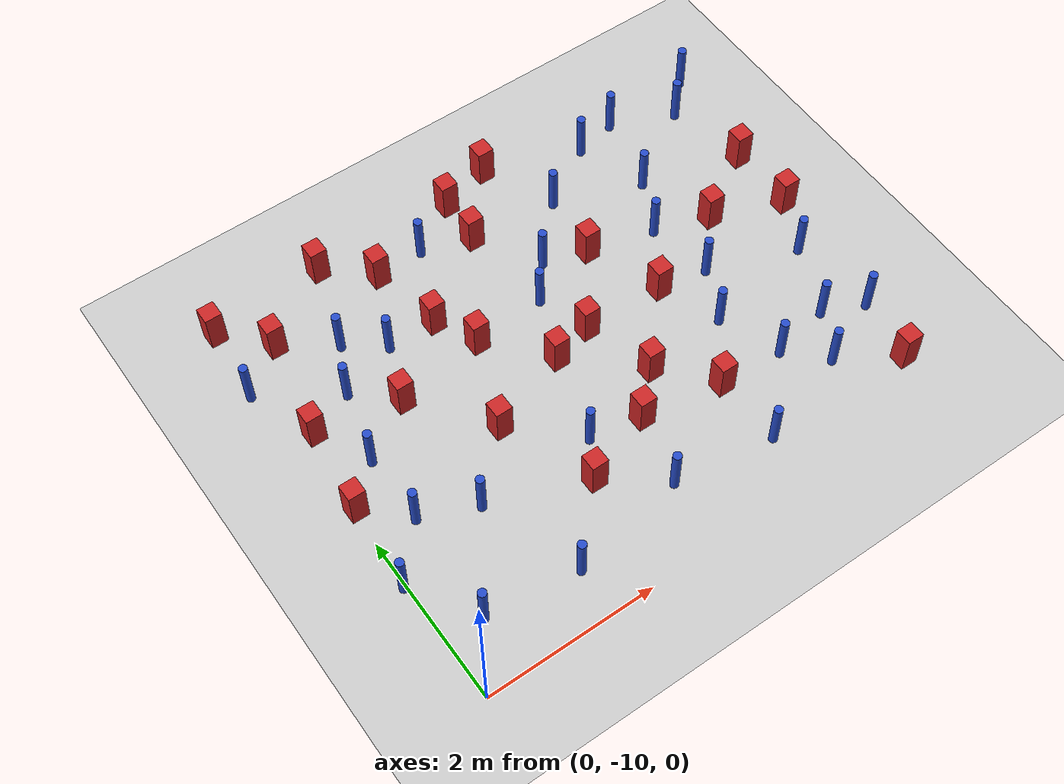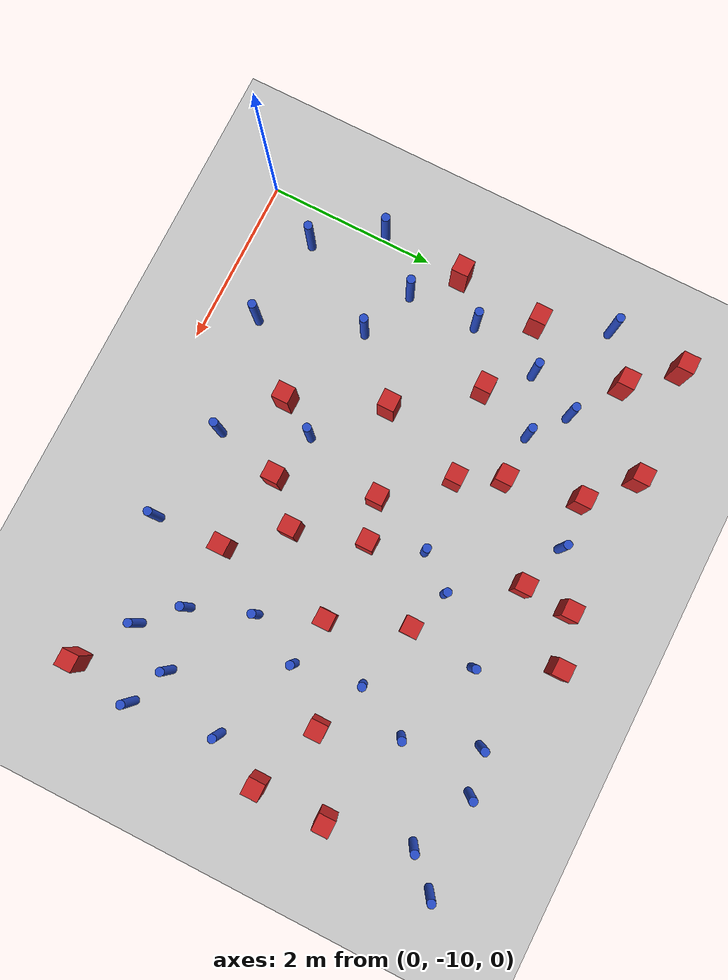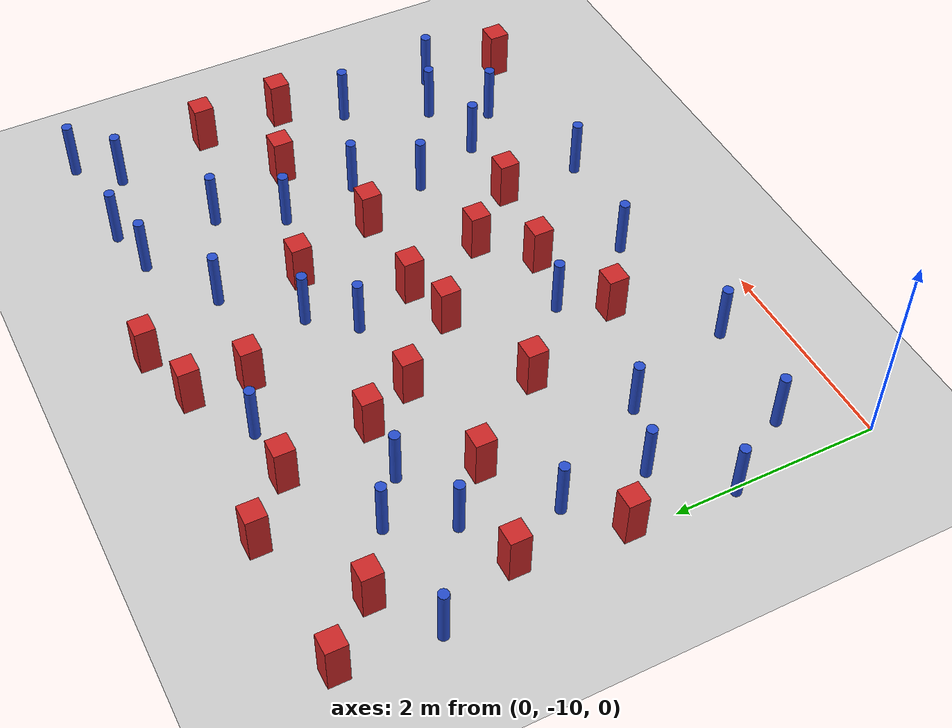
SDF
<sdf version="1.6">
 <world name="default">
  <model name="ground_plane">
   <static>1</static>
   <link name="link">
    <collision name="collision">
     <geometry><plane><normal>0 0 1</normal><size>100 100</size></plane></geometry>
     <surface><friction><ode><mu>100</mu><mu2>50</mu2></ode></friction></surface>
    </collision>
    <visual name="visual">
     <cast_shadows>0</cast_shadows>
     <geometry><plane><normal>0 0 1</normal><size>100 100</size></plane></geometry>
     <material>
      <ambient>1.0 1.0 1.0 1.0</ambient>
      <diffuse>0.8 0.8 0.8 1.0</diffuse>
      <specular>0.01 0.01 0.01 1.000000</specular>
     </material>
    </visual>
   </link>
  </model>
  <model name="square_post_obstacle0">
   <static>true</static>
   <pose>3.88587274836 -6.28181637995 8.22691968438e-08 7.22125133819e-06 -7.54495500217e-07 2.29674213826e-05</pose>
   <link name="link">
    <pose>0 0 0.25 0 -0 0</pose>
    <inertial>
     <mass>100</mass>
     <inertia>
      <ixx>0.166667</ixx>
      <ixy>0</ixy>
      <ixz>0</ixz>
      <iyy>0.166667</iyy>
      <iyz>0</iyz>
      <izz>0.166667</izz>
     </inertia>
    </inertial>
    <collision name="collision"><geometry><box><size>.2 .2 .5</size></box></geometry></collision>
    <visual name="visual">
     <geometry><box><size>.2 .2 .5</size></box></geometry>
     <material>
      <script><name>Gazebo/Red</name><uri>file://media/materials/scripts/gazebo.material</uri></script>
     </material>
    </visual>
   </link>
  </model>
  <model name="square_post_obstacle16">
   <static>true</static>
   <pose>0.372748697195 -5.35796301206 8.22691968438e-08 7.22125133819e-06 -7.54495500217e-07 2.29674213826e-05</pose>
   <link name="link">
    <pose>0 0 0.25 0 -0 0</pose>
    <inertial>
     <mass>100</mass>
     <inertia>
      <ixx>0.166667</ixx>
      <ixy>0</ixy>
      <ixz>0</ixz>
      <iyy>0.166667</iyy>
      <iyz>0</iyz>
      <izz>0.166667</izz>
     </inertia>
    </inertial>
    <collision name="collision"><geometry><box><size>.2 .2 .5</size></box></geometry></collision>
    <visual name="visual">
     <geometry><box><size>.2 .2 .5</size></box></geometry>
     <material>
      <script><name>Gazebo/Red</name><uri>file://media/materials/scripts/gazebo.material</uri></script>
     </material>
    </visual>
   </link>
  </model>
  <model name="square_post_obstacle22">
   <static>true</static>
   <pose>1.78787143359 -7.61190881936 8.22691968438e-08 7.2212513382e-06 -7.54495500217e-07 2.29674213826e-05</pose>
   <link name="link">
    <pose>0 0 0.25 0 -0 0</pose>
    <inertial>
     <mass>100</mass>
     <inertia>
      <ixx>0.166667</ixx>
      <ixy>0</ixy>
      <ixz>0</ixz>
      <iyy>0.166667</iyy>
      <iyz>0</iyz>
      <izz>0.166667</izz>
     </inertia>
    </inertial>
    <collision name="collision"><geometry><box><size>.2 .2 .5</size></box></geometry></collision>
    <visual name="visual">
     <geometry><box><size>.2 .2 .5</size></box></geometry>
     <material>
      <script><name>Gazebo/Red</name><uri>file://media/materials/scripts/gazebo.material</uri></script>
     </material>
    </visual>
   </link>
  </model>
  <model name="pole_obstacle16">
   <static>true</static>
   <pose>1.52185525362 -9.43841241199 2.88873142074e-08 -9.90536690474e-09 4.60219948974e-07 -1.2096599497e-07</pose>
   <link name="link">
    <pose>0 0 0.3 0 -0 0</pose>
    <inertial>
     <mass>1</mass>
     <inertia><ixx>0.145833</ixx><ixy>0</ixy><ixz>0</ixz><iyy>0.145833</iyy><iyz>0</iyz><izz>0.125</izz></inertia>
    </inertial>
    <collision name="collision">
     <geometry><cylinder><radius>0.05</radius><length>.6</length></cylinder></geometry>
    </collision>
    <visual name="visual">
     <geometry><cylinder><radius>0.05</radius><length>.6</length></cylinder></geometry>
     <material>
      <script><name>Gazebo/Blue</name><uri>file://media/materials/scripts/gazebo.material</uri></script>
     </material>
    </visual>
   </link>
  </model>
  <model name="pole_obstacle17">
   <static>true</static>
   <pose>5.85269137481 -7.62512632585 2.88873142074e-08 -9.90536690842e-09 4.60219948965e-07 -1.20965994976e-07</pose>
   <link name="link">
    <pose>0 0 0.3 0 -0 0</pose>
    <inertial>
     <mass>1</mass>
     <inertia><ixx>0.145833</ixx><ixy>0</ixy><ixz>0</ixz><iyy>0.145833</iyy><iyz>0</iyz><izz>0.125</izz></inertia>
    </inertial>
    <collision name="collision">
     <geometry><cylinder><radius>0.05</radius><length>.6</length></cylinder></geometry>
    </collision>
    <visual name="visual">
     <geometry><cylinder><radius>0.05</radius><length>.6</length></cylinder></geometry>
     <material>
      <script><name>Gazebo/Blue</name><uri>file://media/materials/scripts/gazebo.material</uri></script>
     </material>
    </visual>
   </link>
  </model>
  <model name="pole_obstacle19">
   <static>true</static>
   <pose>3.97534050899 -5.48520951675 2.88873142074e-08 -9.90536690327e-09 4.60219948978e-07 -1.20965994969e-07</pose>
   <link name="link">
    <pose>0 0 0.3 0 -0 0</pose>
    <inertial>
     <mass>1</mass>
     <inertia><ixx>0.145833</ixx><ixy>0</ixy><ixz>0</ixz><iyy>0.145833</iyy><iyz>0</iyz><izz>0.125</izz></inertia>
    </inertial>
    <collision name="collision">
     <geometry><cylinder><radius>0.05</radius><length>.6</length></cylinder></geometry>
    </collision>
    <visual name="visual">
     <geometry><cylinder><radius>0.05</radius><length>.6</length></cylinder></geometry>
     <material>
      <script><name>Gazebo/Blue</name><uri>file://media/materials/scripts/gazebo.material</uri></script>
     </material>
    </visual>
   </link>
  </model>
  <model name="square_post_obstacle33">
   <static>true</static>
   <pose>1.94722496236 -6.09289328699 8.22691968438e-08 7.2212513382e-06 -7.54495500217e-07 2.29674213826e-05</pose>
   <link name="link">
    <pose>0 0 0.25 0 -0 0</pose>
    <inertial>
     <mass>100</mass>
     <inertia>
      <ixx>0.166667</ixx>
      <ixy>0</ixy>
      <ixz>0</ixz>
      <iyy>0.166667</iyy>
      <iyz>0</iyz>
      <izz>0.166667</izz>
     </inertia>
    </inertial>
    <collision name="collision"><geometry><box><size>.2 .2 .5</size></box></geometry></collision>
    <visual name="visual">
     <geometry><box><size>.2 .2 .5</size></box></geometry>
     <material>
      <script><name>Gazebo/Red</name><uri>file://media/materials/scripts/gazebo.material</uri></script>
     </material>
    </visual>
   </link>
  </model>
  <model name="square_post_obstacle41">
   <static>true</static>
   <pose>2.18940264894 -6.58774390337 8.22691968438e-08 7.2212513382e-06 -7.54495500217e-07 2.29674213826e-05</pose>
   <link name="link">
    <pose>0 0 0.25 0 -0 0</pose>
    <inertial>
     <mass>100</mass>
     <inertia>
      <ixx>0.166667</ixx>
      <ixy>0</ixy>
      <ixz>0</ixz>
      <iyy>0.166667</iyy>
      <iyz>0</iyz>
      <izz>0.166667</izz>
     </inertia>
    </inertial>
    <collision name="collision"><geometry><box><size>.2 .2 .5</size></box></geometry></collision>
    <visual name="visual">
     <geometry><box><size>.2 .2 .5</size></box></geometry>
     <material>
      <script><name>Gazebo/Red</name><uri>file://media/materials/scripts/gazebo.material</uri></script>
     </material>
    </visual>
   </link>
  </model>
  <model name="square_post_obstacle46">
   <static>true</static>
   <pose>-0.0832142291083 -4.84861063605 8.22691968438e-08 7.22125133819e-06 -7.54495500217e-07 2.29674213826e-05</pose>
   <link name="link">
    <pose>0 0 0.25 0 -0 0</pose>
    <inertial>
     <mass>100</mass>
     <inertia>
      <ixx>0.166667</ixx>
      <ixy>0</ixy>
      <ixz>0</ixz>
      <iyy>0.166667</iyy>
      <iyz>0</iyz>
      <izz>0.166667</izz>
     </inertia>
    </inertial>
    <collision name="collision"><geometry><box><size>.2 .2 .5</size></box></geometry></collision>
    <visual name="visual">
     <geometry><box><size>.2 .2 .5</size></box></geometry>
     <material>
      <script><name>Gazebo/Red</name><uri>file://media/materials/scripts/gazebo.material</uri></script>
     </material>
    </visual>
   </link>
  </model>
  <model name="pole_obstacle58">
   <static>true</static>
   <pose>-0.162034837645 -5.7480861026 2.88873142074e-08 -9.90536689816e-09 4.6021994899e-07 -1.20965994961e-07</pose>
   <link name="link">
    <pose>0 0 0.3 0 -0 0</pose>
    <inertial>
     <mass>1</mass>
     <inertia><ixx>0.145833</ixx><ixy>0</ixy><ixz>0</ixz><iyy>0.145833</iyy><iyz>0</iyz><izz>0.125</izz></inertia>
    </inertial>
    <collision name="collision">
     <geometry><cylinder><radius>0.05</radius><length>.6</length></cylinder></geometry>
    </collision>
    <visual name="visual">
     <geometry><cylinder><radius>0.05</radius><length>.6</length></cylinder></geometry>
     <material>
      <script><name>Gazebo/Blue</name><uri>file://media/materials/scripts/gazebo.material</uri></script>
     </material>
    </visual>
   </link>
  </model>
  <model name="pole_obstacle62">
   <static>true</static>
   <pose>1.11421868186 -8.26523658623 2.88873142074e-08 -9.90536690474e-09 4.60219948974e-07 -1.2096599497e-07</pose>
   <link name="link">
    <pose>0 0 0.3 0 -0 0</pose>
    <inertial>
     <mass>1</mass>
     <inertia><ixx>0.145833</ixx><ixy>0</ixy><ixz>0</ixz><iyy>0.145833</iyy><iyz>0</iyz><izz>0.125</izz></inertia>
    </inertial>
    <collision name="collision">
     <geometry><cylinder><radius>0.05</radius><length>.6</length></cylinder></geometry>
    </collision>
    <visual name="visual">
     <geometry><cylinder><radius>0.05</radius><length>.6</length></cylinder></geometry>
     <material>
      <script><name>Gazebo/Blue</name><uri>file://media/materials/scripts/gazebo.material</uri></script>
     </material>
    </visual>
   </link>
  </model>
  <model name="square_post_obstacle67">
   <static>true</static>
   <pose>5.84951097965 -9.39676441401 8.22691968438e-08 7.2212513382e-06 -7.54495500217e-07 2.29674213826e-05</pose>
   <link name="link">
    <pose>0 0 0.25 0 -0 0</pose>
    <inertial>
     <mass>100</mass>
     <inertia>
      <ixx>0.166667</ixx>
      <ixy>0</ixy>
      <ixz>0</ixz>
      <iyy>0.166667</iyy>
      <iyz>0</iyz>
      <izz>0.166667</izz>
     </inertia>
    </inertial>
    <collision name="collision"><geometry><box><size>.2 .2 .5</size></box></geometry></collision>
    <visual name="visual">
     <geometry><box><size>.2 .2 .5</size></box></geometry>
     <material>
      <script><name>Gazebo/Red</name><uri>file://media/materials/scripts/gazebo.material</uri></script>
     </material>
    </visual>
   </link>
  </model>
  <model name="square_post_obstacle70">
   <static>true</static>
   <pose>2.92512446061 -5.38618230903 8.22691968438e-08 7.22125133819e-06 -7.54495500217e-07 2.29674213826e-05</pose>
   <link name="link">
    <pose>0 0 0.25 0 -0 0</pose>
    <inertial>
     <mass>100</mass>
     <inertia>
      <ixx>0.166667</ixx>
      <ixy>0</ixy>
      <ixz>0</ixz>
      <iyy>0.166667</iyy>
      <iyz>0</iyz>
      <izz>0.166667</izz>
     </inertia>
    </inertial>
    <collision name="collision"><geometry><box><size>.2 .2 .5</size></box></geometry></collision>
    <visual name="visual">
     <geometry><box><size>.2 .2 .5</size></box></geometry>
     <material>
      <script><name>Gazebo/Red</name><uri>file://media/materials/scripts/gazebo.material</uri></script>
     </material>
    </visual>
   </link>
  </model>
  <model name="square_post_obstacle73">
   <static>true</static>
   <pose>3.07485774727 -8.38293615211 8.22691968438e-08 7.22125133819e-06 -7.54495500217e-07 2.29674213826e-05</pose>
   <link name="link">
    <pose>0 0 0.25 0 -0 0</pose>
    <inertial>
     <mass>100</mass>
     <inertia>
      <ixx>0.166667</ixx>
      <ixy>0</ixy>
      <ixz>0</ixz>
      <iyy>0.166667</iyy>
      <iyz>0</iyz>
      <izz>0.166667</izz>
     </inertia>
    </inertial>
    <collision name="collision"><geometry><box><size>.2 .2 .5</size></box></geometry></collision>
    <visual name="visual">
     <geometry><box><size>.2 .2 .5</size></box></geometry>
     <material>
      <script><name>Gazebo/Red</name><uri>file://media/materials/scripts/gazebo.material</uri></script>
     </material>
    </visual>
   </link>
  </model>
  <model name="pole_obstacle75">
   <static>true</static>
   <pose>1.38172306378 -6.07528457761 2.88873142074e-08 -9.90536689852e-09 4.60219948989e-07 -1.2096599496e-07</pose>
   <link name="link">
    <pose>0 0 0.3 0 -0 0</pose>
    <inertial>
     <mass>1</mass>
     <inertia><ixx>0.145833</ixx><ixy>0</ixy><ixz>0</ixz><iyy>0.145833</iyy><iyz>0</iyz><izz>0.125</izz></inertia>
    </inertial>
    <collision name="collision">
     <geometry><cylinder><radius>0.05</radius><length>.6</length></cylinder></geometry>
    </collision>
    <visual name="visual">
     <geometry><cylinder><radius>0.05</radius><length>.6</length></cylinder></geometry>
     <material>
      <script><name>Gazebo/Blue</name><uri>file://media/materials/scripts/gazebo.material</uri></script>
     </material>
    </visual>
   </link>
  </model>
  <model name="pole_obstacle76">
   <static>true</static>
   <pose>5.19715349979 -4.92097861201 2.88873142074e-08 -9.90536690842e-09 4.60219948965e-07 -1.20965994976e-07</pose>
   <link name="link">
    <pose>0 0 0.3 0 -0 0</pose>
    <inertial>
     <mass>1</mass>
     <inertia><ixx>0.145833</ixx><ixy>0</ixy><ixz>0</ixz><iyy>0.145833</iyy><iyz>0</iyz><izz>0.125</izz></inertia>
    </inertial>
    <collision name="collision">
     <geometry><cylinder><radius>0.05</radius><length>.6</length></cylinder></geometry>
    </collision>
    <visual name="visual">
     <geometry><cylinder><radius>0.05</radius><length>.6</length></cylinder></geometry>
     <material>
      <script><name>Gazebo/Blue</name><uri>file://media/materials/scripts/gazebo.material</uri></script>
     </material>
    </visual>
   </link>
  </model>
  <model name="square_post_obstacle77">
   <static>true</static>
   <pose>1.27220920909 -4.7598005484 8.22691968438e-08 7.2212513382e-06 -7.54495500217e-07 2.29674213826e-05</pose>
   <link name="link">
    <pose>0 0 0.25 0 -0 0</pose>
    <inertial>
     <mass>100</mass>
     <inertia>
      <ixx>0.166667</ixx>
      <ixy>0</ixy>
      <ixz>0</ixz>
      <iyy>0.166667</iyy>
      <iyz>0</iyz>
      <izz>0.166667</izz>
     </inertia>
    </inertial>
    <collision name="collision"><geometry><box><size>.2 .2 .5</size></box></geometry></collision>
    <visual name="visual">
     <geometry><box><size>.2 .2 .5</size></box></geometry>
     <material>
      <script><name>Gazebo/Red</name><uri>file://media/materials/scripts/gazebo.material</uri></script>
     </material>
    </visual>
   </link>
  </model>
  <model name="pole_obstacle84">
   <static>true</static>
   <pose>4.81917092146 -7.25020353155 2.88873142074e-08 -9.90536690842e-09 4.60219948965e-07 -1.20965994976e-07</pose>
   <link name="link">
    <pose>0 0 0.3 0 -0 0</pose>
    <inertial>
     <mass>1</mass>
     <inertia><ixx>0.145833</ixx><ixy>0</ixy><ixz>0</ixz><iyy>0.145833</iyy><iyz>0</iyz><izz>0.125</izz></inertia>
    </inertial>
    <collision name="collision">
     <geometry><cylinder><radius>0.05</radius><length>.6</length></cylinder></geometry>
    </collision>
    <visual name="visual">
     <geometry><cylinder><radius>0.05</radius><length>.6</length></cylinder></geometry>
     <material>
      <script><name>Gazebo/Blue</name><uri>file://media/materials/scripts/gazebo.material</uri></script>
     </material>
    </visual>
   </link>
  </model>
  <model name="square_post_obstacle80">
   <static>true</static>
   <pose>1.78151721624 -5.2187119908 8.22691968438e-08 7.2212513382e-06 -7.54495500217e-07 2.29674213826e-05</pose>
   <link name="link">
    <pose>0 0 0.25 0 -0 0</pose>
    <inertial>
     <mass>100</mass>
     <inertia>
      <ixx>0.166667</ixx>
      <ixy>0</ixy>
      <ixz>0</ixz>
      <iyy>0.166667</iyy>
      <iyz>0</iyz>
      <izz>0.166667</izz>
     </inertia>
    </inertial>
    <collision name="collision"><geometry><box><size>.2 .2 .5</size></box></geometry></collision>
    <visual name="visual">
     <geometry><box><size>.2 .2 .5</size></box></geometry>
     <material>
      <script><name>Gazebo/Red</name><uri>file://media/materials/scripts/gazebo.material</uri></script>
     </material>
    </visual>
   </link>
  </model>
  <model name="pole_obstacle93">
   <static>true</static>
   <pose>4.06114351425 -9.36213691617 2.88873142074e-08 -9.9053668967e-09 4.60219948993e-07 -1.20965994957e-07</pose>
   <link name="link">
    <pose>0 0 0.3 0 -0 0</pose>
    <inertial>
     <mass>1</mass>
     <inertia><ixx>0.145833</ixx><ixy>0</ixy><ixz>0</ixz><iyy>0.145833</iyy><iyz>0</iyz><izz>0.125</izz></inertia>
    </inertial>
    <collision name="collision">
     <geometry><cylinder><radius>0.05</radius><length>.6</length></cylinder></geometry>
    </collision>
    <visual name="visual">
     <geometry><cylinder><radius>0.05</radius><length>.6</length></cylinder></geometry>
     <material>
      <script><name>Gazebo/Blue</name><uri>file://media/materials/scripts/gazebo.material</uri></script>
     </material>
    </visual>
   </link>
  </model>
  <model name="pole_obstacle94">
   <static>true</static>
   <pose>0.48097030206 -8.00014135506 2.88873142074e-08 -9.90536688031e-09 4.6021994903e-07 -1.20965994945e-07</pose>
   <link name="link">
    <pose>0 0 0.3 0 -0 0</pose>
    <inertial>
     <mass>1</mass>
     <inertia><ixx>0.145833</ixx><ixy>0</ixy><ixz>0</ixz><iyy>0.145833</iyy><iyz>0</iyz><izz>0.125</izz></inertia>
    </inertial>
    <collision name="collision">
     <geometry><cylinder><radius>0.05</radius><length>.6</length></cylinder></geometry>
    </collision>
    <visual name="visual">
     <geometry><cylinder><radius>0.05</radius><length>.6</length></cylinder></geometry>
     <material>
      <script><name>Gazebo/Blue</name><uri>file://media/materials/scripts/gazebo.material</uri></script>
     </material>
    </visual>
   </link>
  </model>
  <model name="pole_obstacle100">
   <static>true</static>
   <pose>5.93873573382 -5.22514588491 2.88873142074e-08 -9.90536690842e-09 4.60219948965e-07 -1.20965994976e-07</pose>
   <link name="link">
    <pose>0 0 0.3 0 -0 0</pose>
    <inertial>
     <mass>1</mass>
     <inertia><ixx>0.145833</ixx><ixy>0</ixy><ixz>0</ixz><iyy>0.145833</iyy><iyz>0</iyz><izz>0.125</izz></inertia>
    </inertial>
    <collision name="collision">
     <geometry><cylinder><radius>0.05</radius><length>.6</length></cylinder></geometry>
    </collision>
    <visual name="visual">
     <geometry><cylinder><radius>0.05</radius><length>.6</length></cylinder></geometry>
     <material>
      <script><name>Gazebo/Blue</name><uri>file://media/materials/scripts/gazebo.material</uri></script>
     </material>
    </visual>
   </link>
  </model>
  <model name="pole_obstacle105">
   <static>true</static>
   <pose>0.474001332041 -7.16504157166 2.88873142074e-08 -9.90536689616e-09 4.60219948994e-07 -1.20965994955e-07</pose>
   <link name="link">
    <pose>0 0 0.3 0 -0 0</pose>
    <inertial>
     <mass>1</mass>
     <inertia><ixx>0.145833</ixx><ixy>0</ixy><ixz>0</ixz><iyy>0.145833</iyy><iyz>0</iyz><izz>0.125</izz></inertia>
    </inertial>
    <collision name="collision">
     <geometry><cylinder><radius>0.05</radius><length>.6</length></cylinder></geometry>
    </collision>
    <visual name="visual">
     <geometry><cylinder><radius>0.05</radius><length>.6</length></cylinder></geometry>
     <material>
      <script><name>Gazebo/Blue</name><uri>file://media/materials/scripts/gazebo.material</uri></script>
     </material>
    </visual>
   </link>
  </model>
  <model name="square_post_obstacle94">
   <static>true</static>
   <pose>3.56288351178 -4.64414307881 8.22691968438e-08 7.2212513382e-06 -7.54495500217e-07 2.29674213826e-05</pose>
   <link name="link">
    <pose>0 0 0.25 0 -0 0</pose>
    <inertial>
     <mass>100</mass>
     <inertia>
      <ixx>0.166667</ixx>
      <ixy>0</ixy>
      <ixz>0</ixz>
      <iyy>0.166667</iyy>
      <iyz>0</iyz>
      <izz>0.166667</izz>
     </inertia>
    </inertial>
    <collision name="collision"><geometry><box><size>.2 .2 .5</size></box></geometry></collision>
    <visual name="visual">
     <geometry><box><size>.2 .2 .5</size></box></geometry>
     <material>
      <script><name>Gazebo/Red</name><uri>file://media/materials/scripts/gazebo.material</uri></script>
     </material>
    </visual>
   </link>
  </model>
  <model name="pole_obstacle111">
   <static>true</static>
   <pose>4.79869917082 -8.57607484807 2.88873142074e-08 -9.9053668967e-09 4.60219948993e-07 -1.20965994957e-07</pose>
   <link name="link">
    <pose>0 0 0.3 0 -0 0</pose>
    <inertial>
     <mass>1</mass>
     <inertia><ixx>0.145833</ixx><ixy>0</ixy><ixz>0</ixz><iyy>0.145833</iyy><iyz>0</iyz><izz>0.125</izz></inertia>
    </inertial>
    <collision name="collision">
     <geometry><cylinder><radius>0.05</radius><length>.6</length></cylinder></geometry>
    </collision>
    <visual name="visual">
     <geometry><cylinder><radius>0.05</radius><length>.6</length></cylinder></geometry>
     <material>
      <script><name>Gazebo/Blue</name><uri>file://media/materials/scripts/gazebo.material</uri></script>
     </material>
    </visual>
   </link>
  </model>
  <model name="square_post_obstacle101">
   <static>true</static>
   <pose>1.1267404475 -6.75029255273 8.22691968438e-08 7.2212513382e-06 -7.54495500217e-07 2.29674213826e-05</pose>
   <link name="link">
    <pose>0 0 0.25 0 -0 0</pose>
    <inertial>
     <mass>100</mass>
     <inertia>
      <ixx>0.166667</ixx>
      <ixy>0</ixy>
      <ixz>0</ixz>
      <iyy>0.166667</iyy>
      <iyz>0</iyz>
      <izz>0.166667</izz>
     </inertia>
    </inertial>
    <collision name="collision"><geometry><box><size>.2 .2 .5</size></box></geometry></collision>
    <visual name="visual">
     <geometry><box><size>.2 .2 .5</size></box></geometry>
     <material>
      <script><name>Gazebo/Red</name><uri>file://media/materials/scripts/gazebo.material</uri></script>
     </material>
    </visual>
   </link>
  </model>
  <model name="pole_obstacle121">
   <static>true</static>
   <pose>2.3564330901 -5.18845771781 2.88873142074e-08 -9.90536689859e-09 4.60219948989e-07 -1.20965994961e-07</pose>
   <link name="link">
    <pose>0 0 0.3 0 -0 0</pose>
    <inertial>
     <mass>1</mass>
     <inertia><ixx>0.145833</ixx><ixy>0</ixy><ixz>0</ixz><iyy>0.145833</iyy><iyz>0</iyz><izz>0.125</izz></inertia>
    </inertial>
    <collision name="collision">
     <geometry><cylinder><radius>0.05</radius><length>.6</length></cylinder></geometry>
    </collision>
    <visual name="visual">
     <geometry><cylinder><radius>0.05</radius><length>.6</length></cylinder></geometry>
     <material>
      <script><name>Gazebo/Blue</name><uri>file://media/materials/scripts/gazebo.material</uri></script>
     </material>
    </visual>
   </link>
  </model>
  <model name="pole_obstacle126">
   <static>true</static>
   <pose>4.9866592312 -5.85035981053 2.88873142074e-08 -9.90536690842e-09 4.60219948965e-07 -1.20965994976e-07</pose>
   <link name="link">
    <pose>0 0 0.3 0 -0 0</pose>
    <inertial>
     <mass>1</mass>
     <inertia><ixx>0.145833</ixx><ixy>0</ixy><ixz>0</ixz><iyy>0.145833</iyy><iyz>0</iyz><izz>0.125</izz></inertia>
    </inertial>
    <collision name="collision">
     <geometry><cylinder><radius>0.05</radius><length>.6</length></cylinder></geometry>
    </collision>
    <visual name="visual">
     <geometry><cylinder><radius>0.05</radius><length>.6</length></cylinder></geometry>
     <material>
      <script><name>Gazebo/Blue</name><uri>file://media/materials/scripts/gazebo.material</uri></script>
     </material>
    </visual>
   </link>
  </model>
  <model name="pole_obstacle127">
   <static>true</static>
   <pose>0.95964952021 -5.75179516101 2.88873142074e-08 -9.90536689421e-09 4.60219948999e-07 -1.20965994953e-07</pose>
   <link name="link">
    <pose>0 0 0.3 0 -0 0</pose>
    <inertial>
     <mass>1</mass>
     <inertia><ixx>0.145833</ixx><ixy>0</ixy><ixz>0</ixz><iyy>0.145833</iyy><iyz>0</iyz><izz>0.125</izz></inertia>
    </inertial>
    <collision name="collision">
     <geometry><cylinder><radius>0.05</radius><length>.6</length></cylinder></geometry>
    </collision>
    <visual name="visual">
     <geometry><cylinder><radius>0.05</radius><length>.6</length></cylinder></geometry>
     <material>
      <script><name>Gazebo/Blue</name><uri>file://media/materials/scripts/gazebo.material</uri></script>
     </material>
    </visual>
   </link>
  </model>
  <model name="pole_obstacle131">
   <static>true</static>
   <pose>4.67871198009 -6.47380503467 2.88873142074e-08 -9.90536690842e-09 4.60219948965e-07 -1.20965994976e-07</pose>
   <link name="link">
    <pose>0 0 0.3 0 -0 0</pose>
    <inertial>
     <mass>1</mass>
     <inertia><ixx>0.145833</ixx><ixy>0</ixy><ixz>0</ixz><iyy>0.145833</iyy><iyz>0</iyz><izz>0.125</izz></inertia>
    </inertial>
    <collision name="collision">
     <geometry><cylinder><radius>0.05</radius><length>.6</length></cylinder></geometry>
    </collision>
    <visual name="visual">
     <geometry><cylinder><radius>0.05</radius><length>.6</length></cylinder></geometry>
     <material>
      <script><name>Gazebo/Blue</name><uri>file://media/materials/scripts/gazebo.material</uri></script>
     </material>
    </visual>
   </link>
  </model>
  <model name="pole_obstacle135">
   <static>true</static>
   <pose>5.97801966827 -8.64078582222 2.88873142074e-08 -9.9053668967e-09 4.60219948993e-07 -1.20965994957e-07</pose>
   <link name="link">
    <pose>0 0 0.3 0 -0 0</pose>
    <inertial>
     <mass>1</mass>
     <inertia><ixx>0.145833</ixx><ixy>0</ixy><ixz>0</ixz><iyy>0.145833</iyy><iyz>0</iyz><izz>0.125</izz></inertia>
    </inertial>
    <collision name="collision">
     <geometry><cylinder><radius>0.05</radius><length>.6</length></cylinder></geometry>
    </collision>
    <visual name="visual">
     <geometry><cylinder><radius>0.05</radius><length>.6</length></cylinder></geometry>
     <material>
      <script><name>Gazebo/Blue</name><uri>file://media/materials/scripts/gazebo.material</uri></script>
     </material>
    </visual>
   </link>
  </model>
  <model name="pole_obstacle137">
   <static>true</static>
   <pose>5.19728858066 -8.9804936933 2.88873142074e-08 -9.9053668967e-09 4.60219948993e-07 -1.20965994957e-07</pose>
   <link name="link">
    <pose>0 0 0.3 0 -0 0</pose>
    <inertial>
     <mass>1</mass>
     <inertia><ixx>0.145833</ixx><ixy>0</ixy><ixz>0</ixz><iyy>0.145833</iyy><iyz>0</iyz><izz>0.125</izz></inertia>
    </inertial>
    <collision name="collision">
     <geometry><cylinder><radius>0.05</radius><length>.6</length></cylinder></geometry>
    </collision>
    <visual name="visual">
     <geometry><cylinder><radius>0.05</radius><length>.6</length></cylinder></geometry>
     <material>
      <script><name>Gazebo/Blue</name><uri>file://media/materials/scripts/gazebo.material</uri></script>
     </material>
    </visual>
   </link>
  </model>
  <model name="pole_obstacle140">
   <static>true</static>
   <pose>-0.0321235755052 -8.57243195223 2.88873142074e-08 -9.90536690898e-09 4.60219948964e-07 -1.20965994978e-07</pose>
   <link name="link">
    <pose>0 0 0.3 0 -0 0</pose>
    <inertial>
     <mass>1</mass>
     <inertia><ixx>0.145833</ixx><ixy>0</ixy><ixz>0</ixz><iyy>0.145833</iyy><iyz>0</iyz><izz>0.125</izz></inertia>
    </inertial>
    <collision name="collision">
     <geometry><cylinder><radius>0.05</radius><length>.6</length></cylinder></geometry>
    </collision>
    <visual name="visual">
     <geometry><cylinder><radius>0.05</radius><length>.6</length></cylinder></geometry>
     <material>
      <script><name>Gazebo/Blue</name><uri>file://media/materials/scripts/gazebo.material</uri></script>
     </material>
    </visual>
   </link>
  </model>
  <model name="square_post_obstacle132">
   <static>true</static>
   <pose>0.152988421239 -6.54569249406 8.22691968438e-08 7.22125133819e-06 -7.54495500217e-07 2.29674213826e-05</pose>
   <link name="link">
    <pose>0 0 0.25 0 -0 0</pose>
    <inertial>
     <mass>100</mass>
     <inertia>
      <ixx>0.166667</ixx>
      <ixy>0</ixy>
      <ixz>0</ixz>
      <iyy>0.166667</iyy>
      <iyz>0</iyz>
      <izz>0.166667</izz>
     </inertia>
    </inertial>
    <collision name="collision"><geometry><box><size>.2 .2 .5</size></box></geometry></collision>
    <visual name="visual">
     <geometry><box><size>.2 .2 .5</size></box></geometry>
     <material>
      <script><name>Gazebo/Red</name><uri>file://media/materials/scripts/gazebo.material</uri></script>
     </material>
    </visual>
   </link>
  </model>
  <model name="square_post_obstacle133">
   <static>true</static>
   <pose>5.30824688524 -6.6986566007 8.22691968438e-08 7.22125133819e-06 -7.54495500217e-07 2.29674213826e-05</pose>
   <link name="link">
    <pose>0 0 0.25 0 -0 0</pose>
    <inertial>
     <mass>100</mass>
     <inertia>
      <ixx>0.166667</ixx>
      <ixy>0</ixy>
      <ixz>0</ixz>
      <iyy>0.166667</iyy>
      <iyz>0</iyz>
      <izz>0.166667</izz>
     </inertia>
    </inertial>
    <collision name="collision"><geometry><box><size>.2 .2 .5</size></box></geometry></collision>
    <visual name="visual">
     <geometry><box><size>.2 .2 .5</size></box></geometry>
     <material>
      <script><name>Gazebo/Red</name><uri>file://media/materials/scripts/gazebo.material</uri></script>
     </material>
    </visual>
   </link>
  </model>
  <model name="pole_obstacle153">
   <static>true</static>
   <pose>2.88410574001 -9.19195930044 2.88873142074e-08 -9.90536692318e-09 4.6021994893e-07 -1.20965994988e-07</pose>
   <link name="link">
    <pose>0 0 0.3 0 -0 0</pose>
    <inertial>
     <mass>1</mass>
     <inertia><ixx>0.145833</ixx><ixy>0</ixy><ixz>0</ixz><iyy>0.145833</iyy><iyz>0</iyz><izz>0.125</izz></inertia>
    </inertial>
    <collision name="collision">
     <geometry><cylinder><radius>0.05</radius><length>.6</length></cylinder></geometry>
    </collision>
    <visual name="visual">
     <geometry><cylinder><radius>0.05</radius><length>.6</length></cylinder></geometry>
     <material>
      <script><name>Gazebo/Blue</name><uri>file://media/materials/scripts/gazebo.material</uri></script>
     </material>
    </visual>
   </link>
  </model>
  <model name="pole_obstacle156">
   <static>true</static>
   <pose>2.48132085333 -8.2598166967 2.88873142074e-08 -9.90536692318e-09 4.6021994893e-07 -1.20965994988e-07</pose>
   <link name="link">
    <pose>0 0 0.3 0 -0 0</pose>
    <inertial>
     <mass>1</mass>
     <inertia><ixx>0.145833</ixx><ixy>0</ixy><ixz>0</ixz><iyy>0.145833</iyy><iyz>0</iyz><izz>0.125</izz></inertia>
    </inertial>
    <collision name="collision">
     <geometry><cylinder><radius>0.05</radius><length>.6</length></cylinder></geometry>
    </collision>
    <visual name="visual">
     <geometry><cylinder><radius>0.05</radius><length>.6</length></cylinder></geometry>
     <material>
      <script><name>Gazebo/Blue</name><uri>file://media/materials/scripts/gazebo.material</uri></script>
     </material>
    </visual>
   </link>
  </model>
  <model name="square_post_obstacle149">
   <static>true</static>
   <pose>4.23104383251 -7.15534752034 8.22691968438e-08 7.22125133819e-06 -7.54495500217e-07 2.29674213826e-05</pose>
   <link name="link">
    <pose>0 0 0.25 0 -0 0</pose>
    <inertial>
     <mass>100</mass>
     <inertia>
      <ixx>0.166667</ixx>
      <ixy>0</ixy>
      <ixz>0</ixz>
      <iyy>0.166667</iyy>
      <iyz>0</iyz>
      <izz>0.166667</izz>
     </inertia>
    </inertial>
    <collision name="collision"><geometry><box><size>.2 .2 .5</size></box></geometry></collision>
    <visual name="visual">
     <geometry><box><size>.2 .2 .5</size></box></geometry>
     <material>
      <script><name>Gazebo/Red</name><uri>file://media/materials/scripts/gazebo.material</uri></script>
     </material>
    </visual>
   </link>
  </model>
  <model name="pole_obstacle157">
   <static>true</static>
   <pose>4.6935741705 -5.03222243823 2.88873142074e-08 -9.90536690842e-09 4.60219948965e-07 -1.20965994976e-07</pose>
   <link name="link">
    <pose>0 0 0.3 0 -0 0</pose>
    <inertial>
     <mass>1</mass>
     <inertia><ixx>0.145833</ixx><ixy>0</ixy><ixz>0</ixz><iyy>0.145833</iyy><iyz>0</iyz><izz>0.125</izz></inertia>
    </inertial>
    <collision name="collision">
     <geometry><cylinder><radius>0.05</radius><length>.6</length></cylinder></geometry>
    </collision>
    <visual name="visual">
     <geometry><cylinder><radius>0.05</radius><length>.6</length></cylinder></geometry>
     <material>
      <script><name>Gazebo/Blue</name><uri>file://media/materials/scripts/gazebo.material</uri></script>
     </material>
    </visual>
   </link>
  </model>
  <model name="pole_obstacle160">
   <static>true</static>
   <pose>0.693634653241 -6.32317515183 2.88873142074e-08 -9.90536689661e-09 4.60219948993e-07 -1.20965994957e-07</pose>
   <link name="link">
    <pose>0 0 0.3 0 -0 0</pose>
    <inertial>
     <mass>1</mass>
     <inertia><ixx>0.145833</ixx><ixy>0</ixy><ixz>0</ixz><iyy>0.145833</iyy><iyz>0</iyz><izz>0.125</izz></inertia>
    </inertial>
    <collision name="collision">
     <geometry><cylinder><radius>0.05</radius><length>.6</length></cylinder></geometry>
    </collision>
    <visual name="visual">
     <geometry><cylinder><radius>0.05</radius><length>.6</length></cylinder></geometry>
     <material>
      <script><name>Gazebo/Blue</name><uri>file://media/materials/scripts/gazebo.material</uri></script>
     </material>
    </visual>
   </link>
  </model>
  <model name="square_post_obstacle154">
   <static>true</static>
   <pose>2.95391104532 -4.81995051254 8.22691968438e-08 7.22125133819e-06 -7.54495500217e-07 2.29674213826e-05</pose>
   <link name="link">
    <pose>0 0 0.25 0 -0 0</pose>
    <inertial>
     <mass>100</mass>
     <inertia>
      <ixx>0.166667</ixx>
      <ixy>0</ixy>
      <ixz>0</ixz>
      <iyy>0.166667</iyy>
      <iyz>0</iyz>
      <izz>0.166667</izz>
     </inertia>
    </inertial>
    <collision name="collision"><geometry><box><size>.2 .2 .5</size></box></geometry></collision>
    <visual name="visual">
     <geometry><box><size>.2 .2 .5</size></box></geometry>
     <material>
      <script><name>Gazebo/Red</name><uri>file://media/materials/scripts/gazebo.material</uri></script>
     </material>
    </visual>
   </link>
  </model>
  <model name="square_post_obstacle159">
   <static>true</static>
   <pose>6.13505261675 -7.01056858902 8.22691968438e-08 7.22125133819e-06 -7.54495500217e-07 2.29674213826e-05</pose>
   <link name="link">
    <pose>0 0 0.25 0 -0 0</pose>
    <inertial>
     <mass>100</mass>
     <inertia>
      <ixx>0.166667</ixx>
      <ixy>0</ixy>
      <ixz>0</ixz>
      <iyy>0.166667</iyy>
      <iyz>0</iyz>
      <izz>0.166667</izz>
     </inertia>
    </inertial>
    <collision name="collision"><geometry><box><size>.2 .2 .5</size></box></geometry></collision>
    <visual name="visual">
     <geometry><box><size>.2 .2 .5</size></box></geometry>
     <material>
      <script><name>Gazebo/Red</name><uri>file://media/materials/scripts/gazebo.material</uri></script>
     </material>
    </visual>
   </link>
  </model>
  <model name="pole_obstacle171">
   <static>true</static>
   <pose>5.49474854263 -8.43502775296 2.88873142074e-08 -9.9053668967e-09 4.60219948993e-07 -1.20965994957e-07</pose>
   <link name="link">
    <pose>0 0 0.3 0 -0 0</pose>
    <inertial>
     <mass>1</mass>
     <inertia><ixx>0.145833</ixx><ixy>0</ixy><ixz>0</ixz><iyy>0.145833</iyy><iyz>0</iyz><izz>0.125</izz></inertia>
    </inertial>
    <collision name="collision">
     <geometry><cylinder><radius>0.05</radius><length>.6</length></cylinder></geometry>
    </collision>
    <visual name="visual">
     <geometry><cylinder><radius>0.05</radius><length>.6</length></cylinder></geometry>
     <material>
      <script><name>Gazebo/Blue</name><uri>file://media/materials/scripts/gazebo.material</uri></script>
     </material>
    </visual>
   </link>
  </model>
  <model name="square_post_obstacle163">
   <static>true</static>
   <pose>6.13064122899 -6.18469593056 8.22691968438e-08 7.2212513382e-06 -7.54495500217e-07 2.29674213826e-05</pose>
   <link name="link">
    <pose>0 0 0.25 0 -0 0</pose>
    <inertial>
     <mass>100</mass>
     <inertia>
      <ixx>0.166667</ixx>
      <ixy>0</ixy>
      <ixz>0</ixz>
      <iyy>0.166667</iyy>
      <iyz>0</iyz>
      <izz>0.166667</izz>
     </inertia>
    </inertial>
    <collision name="collision"><geometry><box><size>.2 .2 .5</size></box></geometry></collision>
    <visual name="visual">
     <geometry><box><size>.2 .2 .5</size></box></geometry>
     <material>
      <script><name>Gazebo/Red</name><uri>file://media/materials/scripts/gazebo.material</uri></script>
     </material>
    </visual>
   </link>
  </model>
  <model name="pole_obstacle181">
   <static>true</static>
   <pose>6.2949550983 -4.85739452685 2.88873142074e-08 -9.90536690842e-09 4.60219948965e-07 -1.20965994976e-07</pose>
   <link name="link">
    <pose>0 0 0.3 0 -0 0</pose>
    <inertial>
     <mass>1</mass>
     <inertia><ixx>0.145833</ixx><ixy>0</ixy><ixz>0</ixz><iyy>0.145833</iyy><iyz>0</iyz><izz>0.125</izz></inertia>
    </inertial>
    <collision name="collision">
     <geometry><cylinder><radius>0.05</radius><length>.6</length></cylinder></geometry>
    </collision>
    <visual name="visual">
     <geometry><cylinder><radius>0.05</radius><length>.6</length></cylinder></geometry>
     <material>
      <script><name>Gazebo/Blue</name><uri>file://media/materials/scripts/gazebo.material</uri></script>
     </material>
    </visual>
   </link>
  </model>
  <model name="pole_obstacle183">
   <static>true</static>
   <pose>3.0680756338 -6.51586725252 2.88873142074e-08 -9.90536689859e-09 4.60219948989e-07 -1.20965994961e-07</pose>
   <link name="link">
    <pose>0 0 0.3 0 -0 0</pose>
    <inertial>
     <mass>1</mass>
     <inertia><ixx>0.145833</ixx><ixy>0</ixy><ixz>0</ixz><iyy>0.145833</iyy><iyz>0</iyz><izz>0.125</izz></inertia>
    </inertial>
    <collision name="collision">
     <geometry><cylinder><radius>0.05</radius><length>.6</length></cylinder></geometry>
    </collision>
    <visual name="visual">
     <geometry><cylinder><radius>0.05</radius><length>.6</length></cylinder></geometry>
     <material>
      <script><name>Gazebo/Blue</name><uri>file://media/materials/scripts/gazebo.material</uri></script>
     </material>
    </visual>
   </link>
  </model>
  <model name="pole_obstacle184">
   <static>true</static>
   <pose>3.38908064484 -6.11212126699 2.88873142074e-08 -9.90536689859e-09 4.60219948989e-07 -1.20965994961e-07</pose>
   <link name="link">
    <pose>0 0 0.3 0 -0 0</pose>
    <inertial>
     <mass>1</mass>
     <inertia><ixx>0.145833</ixx><ixy>0</ixy><ixz>0</ixz><iyy>0.145833</iyy><iyz>0</iyz><izz>0.125</izz></inertia>
    </inertial>
    <collision name="collision">
     <geometry><cylinder><radius>0.05</radius><length>.6</length></cylinder></geometry>
    </collision>
    <visual name="visual">
     <geometry><cylinder><radius>0.05</radius><length>.6</length></cylinder></geometry>
     <material>
      <script><name>Gazebo/Blue</name><uri>file://media/materials/scripts/gazebo.material</uri></script>
     </material>
    </visual>
   </link>
  </model>
  <model name="square_post_obstacle175">
   <static>true</static>
   <pose>4.02455975877 -8.53883228713 8.22691968438e-08 7.2212513382e-06 -7.54495500217e-07 2.29674213826e-05</pose>
   <link name="link">
    <pose>0 0 0.25 0 -0 0</pose>
    <inertial>
     <mass>100</mass>
     <inertia>
      <ixx>0.166667</ixx>
      <ixy>0</ixy>
      <ixz>0</ixz>
      <iyy>0.166667</iyy>
      <iyz>0</iyz>
      <izz>0.166667</izz>
     </inertia>
    </inertial>
    <collision name="collision"><geometry><box><size>.2 .2 .5</size></box></geometry></collision>
    <visual name="visual">
     <geometry><box><size>.2 .2 .5</size></box></geometry>
     <material>
      <script><name>Gazebo/Red</name><uri>file://media/materials/scripts/gazebo.material</uri></script>
     </material>
    </visual>
   </link>
  </model>
  <model name="square_post_obstacle190">
   <static>true</static>
   <pose>0.0382639183199 -7.56313255013 8.22691968438e-08 7.2212513382e-06 -7.54495500217e-07 2.29674213826e-05</pose>
   <link name="link">
    <pose>0 0 0.25 0 -0 0</pose>
    <inertial>
     <mass>100</mass>
     <inertia>
      <ixx>0.166667</ixx>
      <ixy>0</ixy>
      <ixz>0</ixz>
      <iyy>0.166667</iyy>
      <iyz>0</iyz>
      <izz>0.166667</izz>
     </inertia>
    </inertial>
    <collision name="collision"><geometry><box><size>.2 .2 .5</size></box></geometry></collision>
    <visual name="visual">
     <geometry><box><size>.2 .2 .5</size></box></geometry>
     <material>
      <script><name>Gazebo/Red</name><uri>file://media/materials/scripts/gazebo.material</uri></script>
     </material>
    </visual>
   </link>
  </model>
  <model name="square_post_obstacle203">
   <static>true</static>
   <pose>3.26448512371 -7.12909297874 8.22691968438e-08 7.2212513382e-06 -7.54495500217e-07 2.29674213826e-05</pose>
   <link name="link">
    <pose>0 0 0.25 0 -0 0</pose>
    <inertial>
     <mass>100</mass>
     <inertia>
      <ixx>0.166667</ixx>
      <ixy>0</ixy>
      <ixz>0</ixz>
      <iyy>0.166667</iyy>
      <iyz>0</iyz>
      <izz>0.166667</izz>
     </inertia>
    </inertial>
    <collision name="collision"><geometry><box><size>.2 .2 .5</size></box></geometry></collision>
    <visual name="visual">
     <geometry><box><size>.2 .2 .5</size></box></geometry>
     <material>
      <script><name>Gazebo/Red</name><uri>file://media/materials/scripts/gazebo.material</uri></script>
     </material>
    </visual>
   </link>
  </model>
  <model name="pole_obstacle189">
   <static>true</static>
   <pose>0.439557445648 -9.30297182608 2.88873142074e-08 -9.90536691079e-09 4.6021994896e-07 -1.2096599498e-07</pose>
   <link name="link">
    <pose>0 0 0.3 0 -0 0</pose>
    <inertial>
     <mass>1</mass>
     <inertia><ixx>0.145833</ixx><ixy>0</ixy><ixz>0</ixz><iyy>0.145833</iyy><iyz>0</iyz><izz>0.125</izz></inertia>
    </inertial>
    <collision name="collision">
     <geometry><cylinder><radius>0.05</radius><length>.6</length></cylinder></geometry>
    </collision>
    <visual name="visual">
     <geometry><cylinder><radius>0.05</radius><length>.6</length></cylinder></geometry>
     <material>
      <script><name>Gazebo/Blue</name><uri>file://media/materials/scripts/gazebo.material</uri></script>
     </material>
    </visual>
   </link>
  </model>
  <model name="pole_obstacle190">
   <static>true</static>
   <pose>4.52542496129 -7.8617543244 2.88873142074e-08 -9.90536690842e-09 4.60219948965e-07 -1.20965994976e-07</pose>
   <link name="link">
    <pose>0 0 0.3 0 -0 0</pose>
    <inertial>
     <mass>1</mass>
     <inertia><ixx>0.145833</ixx><ixy>0</ixy><ixz>0</ixz><iyy>0.145833</iyy><iyz>0</iyz><izz>0.125</izz></inertia>
    </inertial>
    <collision name="collision">
     <geometry><cylinder><radius>0.05</radius><length>.6</length></cylinder></geometry>
    </collision>
    <visual name="visual">
     <geometry><cylinder><radius>0.05</radius><length>.6</length></cylinder></geometry>
     <material>
      <script><name>Gazebo/Blue</name><uri>file://media/materials/scripts/gazebo.material</uri></script>
     </material>
    </visual>
   </link>
  </model>
  <model name="square_post_obstacle214">
   <static>true</static>
   <pose>2.77326013261 -7.25749022832 8.22691968438e-08 7.22125133819e-06 -7.54495500217e-07 2.29674213826e-05</pose>
   <link name="link">
    <pose>0 0 0.25 0 -0 0</pose>
    <inertial>
     <mass>100</mass>
     <inertia>
      <ixx>0.166667</ixx>
      <ixy>0</ixy>
      <ixz>0</ixz>
      <iyy>0.166667</iyy>
      <iyz>0</iyz>
      <izz>0.166667</izz>
     </inertia>
    </inertial>
    <collision name="collision"><geometry><box><size>.2 .2 .5</size></box></geometry></collision>
    <visual name="visual">
     <geometry><box><size>.2 .2 .5</size></box></geometry>
     <material>
      <script><name>Gazebo/Red</name><uri>file://media/materials/scripts/gazebo.material</uri></script>
     </material>
    </visual>
   </link>
  </model>
  <model name="square_post_obstacle222">
   <static>true</static>
   <pose>2.22829003262 -8.69164003534 8.22691968438e-08 7.2212513382e-06 -7.54495500217e-07 2.29674213826e-05</pose>
   <link name="link">
    <pose>0 0 0.25 0 -0 0</pose>
    <inertial>
     <mass>100</mass>
     <inertia>
      <ixx>0.166667</ixx>
      <ixy>0</ixy>
      <ixz>0</ixz>
      <iyy>0.166667</iyy>
      <iyz>0</iyz>
      <izz>0.166667</izz>
     </inertia>
    </inertial>
    <collision name="collision"><geometry><box><size>.2 .2 .5</size></box></geometry></collision>
    <visual name="visual">
     <geometry><box><size>.2 .2 .5</size></box></geometry>
     <material>
      <script><name>Gazebo/Red</name><uri>file://media/materials/scripts/gazebo.material</uri></script>
     </material>
    </visual>
   </link>
  </model>
  <model name="square_post_obstacle223">
   <static>true</static>
   <pose>3.51131003262 -7.95319003534 8.22691968438e-08 7.2212513382e-06 -7.54495500217e-07 2.29674213826e-05</pose>
   <link name="link">
    <pose>0 0 0.25 0 -0 0</pose>
    <inertial>
     <mass>100</mass>
     <inertia>
      <ixx>0.166667</ixx>
      <ixy>0</ixy>
      <ixz>0</ixz>
      <iyy>0.166667</iyy>
      <iyz>0</iyz>
      <izz>0.166667</izz>
     </inertia>
    </inertial>
    <collision name="collision"><geometry><box><size>.2 .2 .5</size></box></geometry></collision>
    <visual name="visual">
     <geometry><box><size>.2 .2 .5</size></box></geometry>
     <material>
      <script><name>Gazebo/Red</name><uri>file://media/materials/scripts/gazebo.material</uri></script>
     </material>
    </visual>
   </link>
  </model>
 </world>
</sdf>
